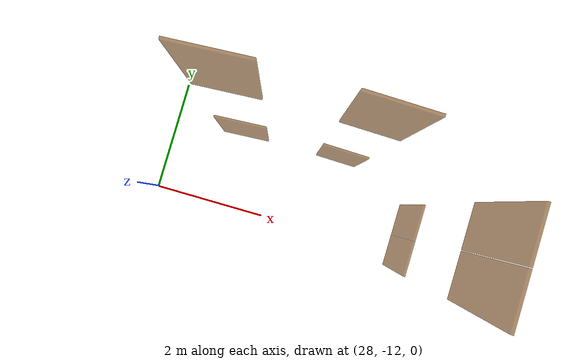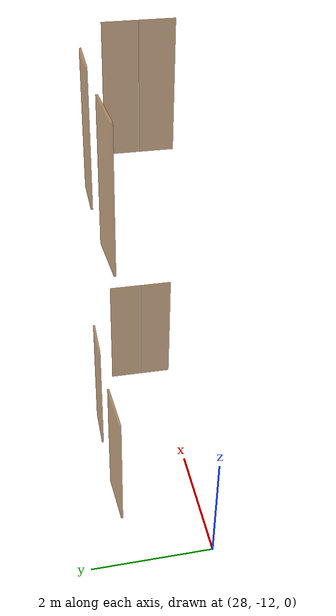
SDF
<sdf version="1.7">
 <world name="sim_world">
  <model name="null38">
   <pose>32.45571640848473 -11.6640474200379 0.0 0 0 1.5588901350902002</pose>
   <link name="right">
    <pose>0.29328832173326724 0 1.11 0 0 0</pose>
    <visual name="right_visual">
     <geometry><box><size>0.5765766434665345 0.03 2.2</size></box></geometry>
     <material>
      <ambient>0.5 0.25 0 0.6</ambient>
      <diffuse>0.5 0.25 0 0.6</diffuse>
      <pbr><metal><metalness>0.0</metalness></metal></pbr>
     </material>
    </visual>
    <collision name="right_collision">
     <geometry><box><size>0.5765766434665345 0.03 2.2</size></box></geometry>
     <surface><contact><collide_bitmask>0x02</collide_bitmask></contact></surface>
    </collision>
    <inertial>
     <mass>50.0</mass>
     <inertia><ixx>20.17041666666667</ixx><iyy>21.5518359407964</iyy><izz>1.3889192741297303</izz></inertia>
    </inertial>
   </link>
   <joint name="right_joint" type="revolute">
    <parent>world</parent>
    <child>right</child>
    <axis><xyz>0 0 -1</xyz><limit><lower>0</lower><upper>1.57</upper></limit></axis>
    <pose>0.29328832173326724 0 0 0 0 0</pose>
   </joint>
   <link name="left">
    <pose>-0.29328832173326724 0 1.11 0 0 0</pose>
    <visual name="left_visual">
     <geometry><box><size>0.5765766434665345 0.03 2.2</size></box></geometry>
     <material>
      <ambient>0.5 0.25 0 0.6</ambient>
      <diffuse>0.5 0.25 0 0.6</diffuse>
      <pbr><metal><metalness>0.0</metalness></metal></pbr>
     </material>
    </visual>
    <collision name="left_collision">
     <geometry><box><size>0.5765766434665345 0.03 2.2</size></box></geometry>
     <surface><contact><collide_bitmask>0x02</collide_bitmask></contact></surface>
    </collision>
    <inertial>
     <mass>50.0</mass>
     <inertia><ixx>20.17041666666667</ixx><iyy>21.5518359407964</iyy><izz>1.3889192741297303</izz></inertia>
    </inertial>
   </link>
   <joint name="left_joint" type="revolute">
    <parent>world</parent>
    <child>left</child>
    <axis><xyz>0 0 -1</xyz><limit><lower>-1.57</lower><upper>0</upper></limit></axis>
    <pose>-0.29328832173326724 0 0 0 0 0</pose>
   </joint>
   <plugin name="register_component" filename="libregister_component.so">
    <component name="Door">
     <v_max_door>0.5</v_max_door>
     <a_max_door>0.3</a_max_door>
     <a_nom_door>0.15</a_nom_door>
     <dx_min_door>0.01</dx_min_door>
     <f_max_door>500.0</f_max_door>
     <ros_interface>true</ros_interface>
     <door name="null38" type="DoubleSwingDoor" left_joint_name="left_joint" right_joint_name="right_joint"/>
    </component>
   </plugin>
  </model>
  <model name="null39">
   <pose>29.321789070916473 -10.631731676511022 0.0 0 0 0.05877496476889836</pose>
   <link name="right">
    <pose>0 0 1.11 0 0 0</pose>
    <visual name="right_visual">
     <geometry><box><size>0.8504002183376965 0.03 2.2</size></box></geometry>
     <material>
      <ambient>0.5 0.25 0 0.6</ambient>
      <diffuse>0.5 0.25 0 0.6</diffuse>
      <pbr><metal><metalness>0.0</metalness></metal></pbr>
     </material>
    </visual>
    <collision name="right_collision">
     <geometry><box><size>0.8504002183376965 0.03 2.2</size></box></geometry>
     <surface><contact><collide_bitmask>0x02</collide_bitmask></contact></surface>
    </collision>
    <inertial>
     <mass>50.0</mass>
     <inertia><ixx>20.17041666666667</ixx><iyy>23.17991888062001</iyy><izz>3.0170022139533414</izz></inertia>
    </inertial>
   </link>
   <joint name="right_joint" type="revolute">
    <parent>world</parent>
    <child>right</child>
    <axis><xyz>0 0 -1</xyz><limit><lower>0</lower><upper>1.57</upper></limit></axis>
    <pose>0.43020010916884827 0 0 0 0 0</pose>
   </joint>
   <plugin name="register_component" filename="libregister_component.so">
    <component name="Door">
     <v_max_door>0.5</v_max_door>
     <a_max_door>0.3</a_max_door>
     <a_nom_door>0.15</a_nom_door>
     <dx_min_door>0.01</dx_min_door>
     <f_max_door>500.0</f_max_door>
     <ros_interface>true</ros_interface>
     <door name="null39" type="SwingDoor" left_joint_name="empty_joint" right_joint_name="right_joint"/>
    </component>
   </plugin>
  </model>
  <model name="null51">
   <pose>31.056432352613417 -10.614889390393408 0.0 0 0 -0.02223829331069744</pose>
   <link name="right">
    <pose>0 0 1.11 0 0 0</pose>
    <visual name="right_visual">
     <geometry><box><size>0.7480482401400365 0.03 2.2</size></box></geometry>
     <material>
      <ambient>0.5 0.25 0 0.6</ambient>
      <diffuse>0.5 0.25 0 0.6</diffuse>
      <pbr><metal><metalness>0.0</metalness></metal></pbr>
     </material>
    </visual>
    <collision name="right_collision">
     <geometry><box><size>0.7480482401400365 0.03 2.2</size></box></geometry>
     <surface><contact><collide_bitmask>0x02</collide_bitmask></contact></surface>
    </collision>
    <inertial>
     <mass>50.0</mass>
     <inertia><ixx>20.17041666666667</ixx><iyy>22.49823403990253</iyy><izz>2.3353173732358568</izz></inertia>
    </inertial>
   </link>
   <joint name="right_joint" type="revolute">
    <parent>world</parent>
    <child>right</child>
    <axis><xyz>0 0 -1</xyz><limit><lower>0</lower><upper>1.57</upper></limit></axis>
    <pose>0.37902412007001823 0 0 0 0 0</pose>
   </joint>
   <plugin name="register_component" filename="libregister_component.so">
    <component name="Door">
     <v_max_door>0.5</v_max_door>
     <a_max_door>0.3</a_max_door>
     <a_nom_door>0.15</a_nom_door>
     <dx_min_door>0.01</dx_min_door>
     <f_max_door>500.0</f_max_door>
     <ros_interface>true</ros_interface>
     <door name="null51" type="SwingDoor" left_joint_name="empty_joint" right_joint_name="right_joint"/>
    </component>
   </plugin>
  </model>
  <model name="anull38">
   <pose>32.457739552805734 -11.636879518713437 5.0 0 0 1.5588909969090314</pose>
   <link name="right">
    <pose>0.29328958554205253 0 1.11 0 0 0</pose>
    <visual name="right_visual">
     <geometry><box><size>0.5765791710841051 0.03 2.2</size></box></geometry>
     <material>
      <ambient>0.5 0.25 0 0.6</ambient>
      <diffuse>0.5 0.25 0 0.6</diffuse>
      <pbr><metal><metalness>0.0</metalness></metal></pbr>
     </material>
    </visual>
    <collision name="right_collision">
     <geometry><box><size>0.5765791710841051 0.03 2.2</size></box></geometry>
     <surface><contact><collide_bitmask>0x02</collide_bitmask></contact></surface>
    </collision>
    <inertial>
     <mass>50.0</mass>
     <inertia><ixx>20.17041666666667</ixx><iyy>21.55184808553348</iyy><izz>1.3889314188668074</izz></inertia>
    </inertial>
   </link>
   <joint name="right_joint" type="revolute">
    <parent>world</parent>
    <child>right</child>
    <axis><xyz>0 0 -1</xyz><limit><lower>0</lower><upper>1.57</upper></limit></axis>
    <pose>0.29328958554205253 0 0 0 0 0</pose>
   </joint>
   <link name="left">
    <pose>-0.29328958554205253 0 1.11 0 0 0</pose>
    <visual name="left_visual">
     <geometry><box><size>0.5765791710841051 0.03 2.2</size></box></geometry>
     <material>
      <ambient>0.5 0.25 0 0.6</ambient>
      <diffuse>0.5 0.25 0 0.6</diffuse>
      <pbr><metal><metalness>0.0</metalness></metal></pbr>
     </material>
    </visual>
    <collision name="left_collision">
     <geometry><box><size>0.5765791710841051 0.03 2.2</size></box></geometry>
     <surface><contact><collide_bitmask>0x02</collide_bitmask></contact></surface>
    </collision>
    <inertial>
     <mass>50.0</mass>
     <inertia><ixx>20.17041666666667</ixx><iyy>21.55184808553348</iyy><izz>1.3889314188668074</izz></inertia>
    </inertial>
   </link>
   <joint name="left_joint" type="revolute">
    <parent>world</parent>
    <child>left</child>
    <axis><xyz>0 0 -1</xyz><limit><lower>-1.57</lower><upper>0</upper></limit></axis>
    <pose>-0.29328958554205253 0 0 0 0 0</pose>
   </joint>
   <plugin name="register_component" filename="libregister_component.so">
    <component name="Door">
     <v_max_door>0.5</v_max_door>
     <a_max_door>0.3</a_max_door>
     <a_nom_door>0.15</a_nom_door>
     <dx_min_door>0.01</dx_min_door>
     <f_max_door>500.0</f_max_door>
     <ros_interface>true</ros_interface>
     <door name="anull38" type="DoubleSwingDoor" left_joint_name="left_joint" right_joint_name="right_joint"/>
    </component>
   </plugin>
  </model>
  <model name="anull39">
   <pose>29.32379782115853 -10.60456202772416 5.0 0 0 0.058775826587734774</pose>
   <link name="right">
    <pose>0 0 1.11 0 0 0</pose>
    <visual name="right_visual">
     <geometry><box><size>0.8504039258885051 0.03 2.2</size></box></geometry>
     <material>
      <ambient>0.5 0.25 0 0.6</ambient>
      <diffuse>0.5 0.25 0 0.6</diffuse>
      <pbr><metal><metalness>0.0</metalness></metal></pbr>
     </material>
    </visual>
    <collision name="right_collision">
     <geometry><box><size>0.8504039258885051 0.03 2.2</size></box></geometry>
     <surface><contact><collide_bitmask>0x02</collide_bitmask></contact></surface>
    </collision>
    <inertial>
     <mass>50.0</mass>
     <inertia><ixx>20.17041666666667</ixx><iyy>23.179945154860764</iyy><izz>3.017028488194092</izz></inertia>
    </inertial>
   </link>
   <joint name="right_joint" type="revolute">
    <parent>world</parent>
    <child>right</child>
    <axis><xyz>0 0 -1</xyz><limit><lower>0</lower><upper>1.57</upper></limit></axis>
    <pose>0.43020196294425256 0 0 0 0 0</pose>
   </joint>
   <plugin name="register_component" filename="libregister_component.so">
    <component name="Door">
     <v_max_door>0.5</v_max_door>
     <a_max_door>0.3</a_max_door>
     <a_nom_door>0.15</a_nom_door>
     <dx_min_door>0.01</dx_min_door>
     <f_max_door>500.0</f_max_door>
     <ros_interface>true</ros_interface>
     <door name="anull39" type="SwingDoor" left_joint_name="empty_joint" right_joint_name="right_joint"/>
    </component>
   </plugin>
  </model>
  <model name="anull51">
   <pose>31.058448563091588 -10.587718174076754 5.0 0 0 -0.022237431491855714</pose>
   <link name="right">
    <pose>0 0 1.11 0 0 0</pose>
    <visual name="right_visual">
     <geometry><box><size>0.7480515066459107 0.03 2.2</size></box></geometry>
     <material>
      <ambient>0.5 0.25 0 0.6</ambient>
      <diffuse>0.5 0.25 0 0.6</diffuse>
      <pbr><metal><metalness>0.0</metalness></metal></pbr>
     </material>
    </visual>
    <collision name="right_collision">
     <geometry><box><size>0.7480515066459107 0.03 2.2</size></box></geometry>
     <surface><contact><collide_bitmask>0x02</collide_bitmask></contact></surface>
    </collision>
    <inertial>
     <mass>50.0</mass>
     <inertia><ixx>20.17041666666667</ixx><iyy>22.498254402480075</iyy><izz>2.335337735813404</izz></inertia>
    </inertial>
   </link>
   <joint name="right_joint" type="revolute">
    <parent>world</parent>
    <child>right</child>
    <axis><xyz>0 0 -1</xyz><limit><lower>0</lower><upper>1.57</upper></limit></axis>
    <pose>0.37902575332295535 0 0 0 0 0</pose>
   </joint>
   <plugin name="register_component" filename="libregister_component.so">
    <component name="Door">
     <v_max_door>0.5</v_max_door>
     <a_max_door>0.3</a_max_door>
     <a_nom_door>0.15</a_nom_door>
     <dx_min_door>0.01</dx_min_door>
     <f_max_door>500.0</f_max_door>
     <ros_interface>true</ros_interface>
     <door name="anull51" type="SwingDoor" left_joint_name="empty_joint" right_joint_name="right_joint"/>
    </component>
   </plugin>
  </model>
 </world>
</sdf>
